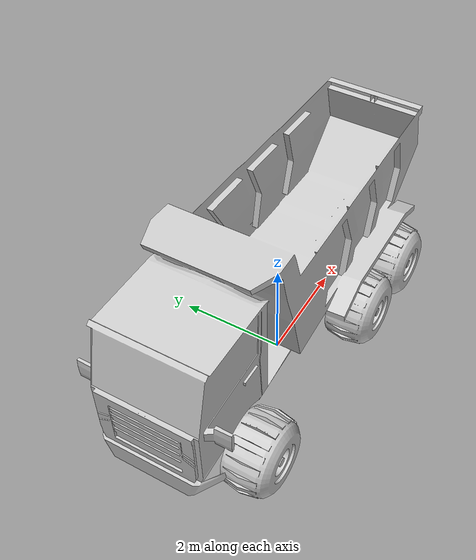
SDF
<?xml version="1.0" ?>
<sdf version="1.6">
  <model name="dumpingtruck">
    <static>true</static>
    <link name="link">
      <collision name="collision">
        <pose>0 0 0 0 0 0</pose>
        <geometry>
          <mesh>
            <scale>0.5 0.5 0.5</scale>
            <uri>model://dumpingtruck/meshes/dumpingtruck.dae</uri>
          </mesh>
        </geometry>
      </collision>
      <visual name="visual">
        <pose>0 0 0 0 0 0</pose>
        <geometry>
          <mesh>
            <scale>0.5 0.5 0.5</scale>
            <uri>model://dumpingtruck/meshes/dumpingtruck.dae</uri>
          </mesh>
        </geometry>
      </visual>
    </link>
  </model>
</sdf>
